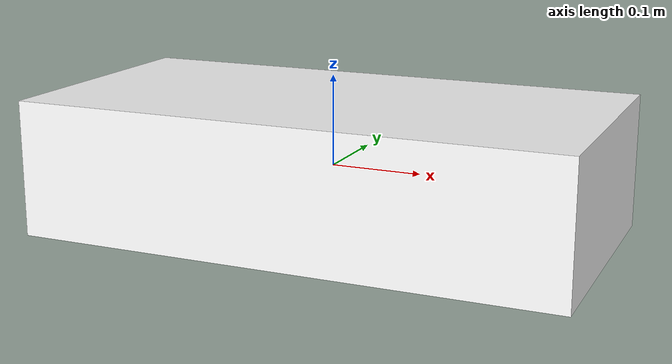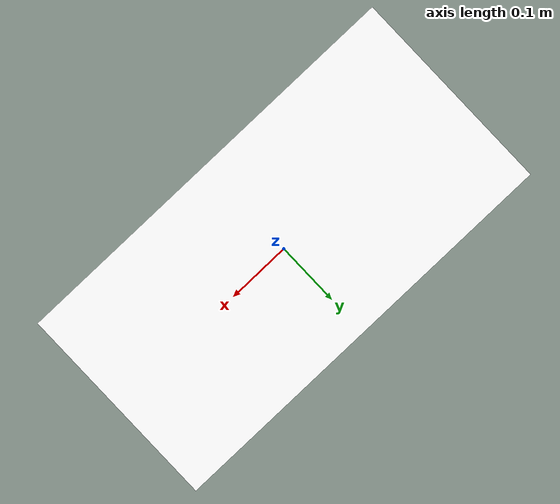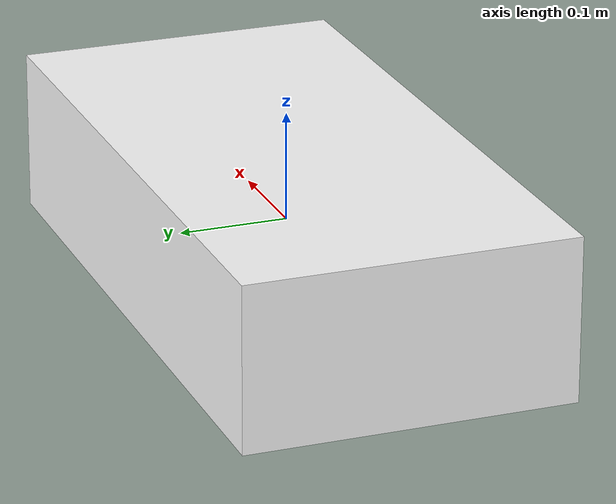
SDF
<?xml version="1.0" ?>
<sdf version="1.6">
  <model name="four_wheeled_cart">
    <static>true</static>
    <link name="chassis">
      <visual name="chassis_visual">
        <geometry>
          <box>
            <size>0.6 0.3 0.15</size>
          </box>
        </geometry>
        <material>
          <ambient>1 1 1 1</ambient>
          <diffuse>1 1 1 1</diffuse>
        </material>
      </visual>
      <collision name="chassis_collision">
        <geometry>
          <box>
            <size>0.6 0.3 0.15</size>
          </box>
        </geometry>
      </collision>
      <inertial>
        <mass>10</mass>
        <inertia>
          <ixx>1</ixx>
          <iyy>1</iyy>
          <izz>1</izz>
          <ixy>0</ixy>
          <ixz>0</ixz>
          <iyz>0</iyz>
        </inertia>
      </inertial>
    </link>

    <!-- Rear Left Wheel -->
    <link name="rear_left_wheel">
      <visual name="rear_left_wheel_visual">
        <geometry>
          <cylinder>
            <radius>0.05</radius>
            <length>0.03</length>
          </cylinder>
        </geometry>
        <material>
          <ambient>0.2 0.2 1 1</ambient>
          <diffuse>0.2 0.2 1 1</diffuse>
        </material>
      </visual>
      <collision name="rear_left_wheel_collision">
        <geometry>
          <cylinder>
            <radius>0.05</radius>
            <length>0.03</length>
          </cylinder>
        </geometry>
      </collision>
    </link>

    <joint name="rear_left_wheel_joint" type="fixed">
      <parent>chassis</parent>
      <child>rear_left_wheel</child>
      <pose>0.25 0.15 0</pose>
    </joint>

    <!-- Rear Right Wheel -->
    <link name="rear_right_wheel">
      <visual name="rear_right_wheel_visual">
        <geometry>
          <cylinder>
            <radius>0.05</radius>
            <length>0.03</length>
          </cylinder>
        </geometry>
        <material>
          <ambient>0.2 0.2 1 1</ambient>
          <diffuse>0.2 0.2 1 1</diffuse>
        </material>
      </visual>
      <collision name="rear_right_wheel_collision">
        <geometry>
          <cylinder>
            <radius>0.05</radius>
            <length>0.03</length>
          </cylinder>
        </geometry>
      </collision>
    </link>

    <joint name="rear_right_wheel_joint" type="fixed">
      <parent>chassis</parent>
      <child>rear_right_wheel</child>
      <pose>0.25 -0.15 0</pose>
    </joint>

    <!-- Front Left Wheel -->
    <link name="front_left_wheel">
      <visual name="front_left_wheel_visual">
        <geometry>
          <cylinder>
            <radius>0.05</radius>
            <length>0.03</length>
          </cylinder>
        </geometry>
        <material>
          <ambient>0.2 0.2 1 1</ambient>
          <diffuse>0.2 0.2 1 1</diffuse>
        </material>
      </visual>
      <collision name="front_left_wheel_collision">
        <geometry>
          <cylinder>
            <radius>0.05</radius>
            <length>0.03</length>
          </cylinder>
        </geometry>
      </collision>
    </link>

    <joint name="front_left_wheel_joint" type="fixed">
      <parent>chassis</parent>
      <child>front_left_wheel</child>
      <pose>-0.25 0.15 0</pose>
    </joint>

    <!-- Front Right Wheel -->
    <link name="front_right_wheel">
      <visual name="front_right_wheel_visual">
        <geometry>
          <cylinder>
            <radius>0.05</radius>
            <length>0.03</length>
          </cylinder>
        </geometry>
        <material>
          <ambient>0.2 0.2 1 1</ambient>
          <diffuse>0.2 0.2 1 1</diffuse>
        </material>
      </visual>
      <collision name="front_right_wheel_collision">
        <geometry>
          <cylinder>
            <radius>0.05</radius>
            <length>0.03</length>
          </cylinder>
        </geometry>
      </collision>
    </link>

    <joint name="front_right_wheel_joint" type="fixed">
      <parent>chassis</parent>
      <child>front_right_wheel</child>
      <pose>-0.25 -0.15 0</pose>
    </joint>
  </model>
</sdf>
